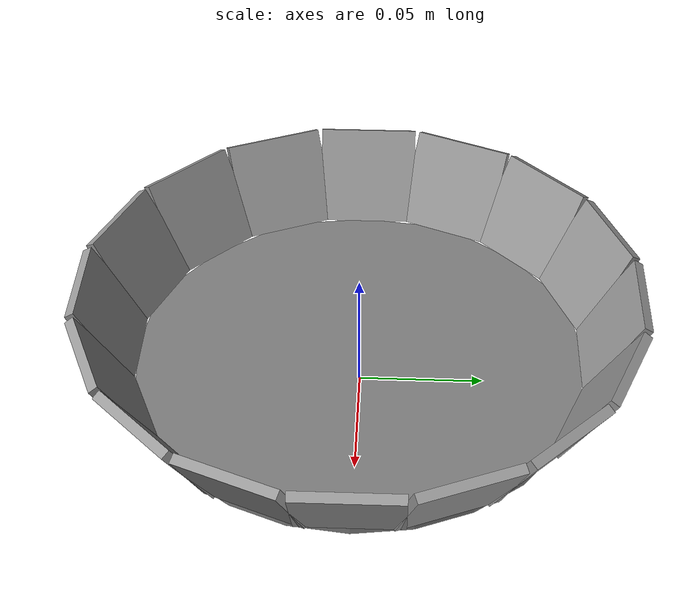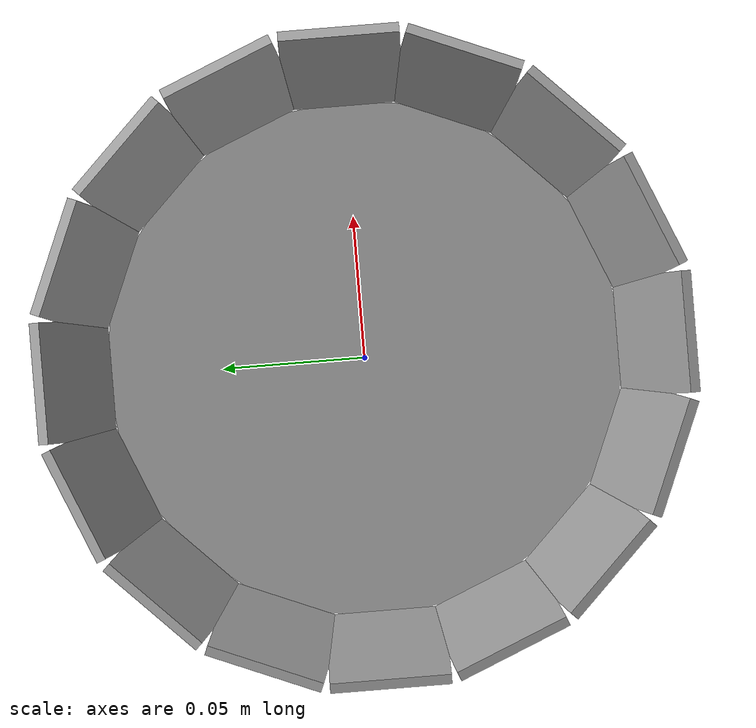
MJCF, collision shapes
<mujoco model="Bowl">

  <default>
    <geom solref="0.01 1" solimp=".95 .99 .0001" condim="1"/>
    <default class="visual">
      <geom group="2" type="mesh" contype="0" conaffinity="0"/>
    </default>
    <default class="collision">
      <geom group="3"/>
    </default>
  </default>

  <asset>
    <material name="White_Gloss" specular="0.5" shininess="0.36" rgba="0.8 0.8 0.8 0.50000"/>
    <mesh file="Bowl.obj"/>
  </asset>

  <worldbody>

  <body name="Bowl">
    <geom type="mesh"  material="White_Gloss" mesh="Bowl" class="visual" quat="0.707 0.707 0 0"/>
    <geom type="cylinder" pos="0 0 0.01" size="0.09 0.003" />
    <geom type="cylinder" pos="0 0 0.003" size="0.06 0.003" />

    <body name="hollow_cylinder" pos="0 0 0.04">
      <geom type="box" size="0.002 0.0205 0.0200" pos="0.0998 0.0000 -0.0100" quat="0.965926 0.000000 0.258819 0.000000" rgba="0.6 0.6 0.6 1" contype="1" conaffinity="1"/>
      <geom type="box" size="0.002 0.0205 0.0200" pos="0.0922 0.0382 -0.0100" quat="0.947366 -0.050493 0.253846 0.188443" rgba="0.6 0.6 0.6 1" contype="1" conaffinity="1"/>
      <geom type="box" size="0.002 0.0205 0.0200" pos="0.0706 0.0706 -0.0100" quat="0.892399 -0.099046 0.239118 0.369644" rgba="0.6 0.6 0.6 1" contype="1" conaffinity="1"/>
      <geom type="box" size="0.002 0.0205 0.0200" pos="0.0382 0.0922 -0.0100" quat="0.803138 -0.143792 0.215200 0.536640" rgba="0.6 0.6 0.6 1" contype="1" conaffinity="1"/>
      <geom type="box" size="0.002 0.0205 0.0200" pos="0.0000 0.0998 -0.0100" quat="0.683013 -0.183013 0.183013 0.683013" rgba="0.6 0.6 0.6 1" contype="1" conaffinity="1"/>
      <geom type="box" size="0.002 0.0205 0.0200" pos="-0.0382 0.0922 -0.0100" quat="0.536640 -0.215200 0.143792 0.803138" rgba="0.6 0.6 0.6 1" contype="1" conaffinity="1"/>
      <geom type="box" size="0.002 0.0205 0.0200" pos="-0.0706 0.0706 -0.0100" quat="0.369644 -0.239118 0.099046 0.892399" rgba="0.6 0.6 0.6 1" contype="1" conaffinity="1"/>
      <geom type="box" size="0.002 0.0205 0.0200" pos="-0.0922 0.0382 -0.0100" quat="0.188443 -0.253846 0.050493 0.947366" rgba="0.6 0.6 0.6 1" contype="1" conaffinity="1"/>
      <geom type="box" size="0.002 0.0205 0.0200" pos="-0.0998 0.0000 -0.0100" quat="0.000000 -0.258819 0.000000 0.965926" rgba="0.6 0.6 0.6 1" contype="1" conaffinity="1"/>
      <geom type="box" size="0.002 0.0205 0.0200" pos="-0.0922 -0.0382 -0.0100" quat="-0.188443 -0.253846 -0.050493 0.947366" rgba="0.6 0.6 0.6 1" contype="1" conaffinity="1"/>
      <geom type="box" size="0.002 0.0205 0.0200" pos="-0.0706 -0.0706 -0.0100" quat="-0.369644 -0.239118 -0.099046 0.892399" rgba="0.6 0.6 0.6 1" contype="1" conaffinity="1"/>
      <geom type="box" size="0.002 0.0205 0.0200" pos="-0.0382 -0.0922 -0.0100" quat="-0.536640 -0.215200 -0.143792 0.803138" rgba="0.6 0.6 0.6 1" contype="1" conaffinity="1"/>
      <geom type="box" size="0.002 0.0205 0.0200" pos="-0.0000 -0.0998 -0.0100" quat="-0.683013 -0.183013 -0.183013 0.683013" rgba="0.6 0.6 0.6 1" contype="1" conaffinity="1"/>
      <geom type="box" size="0.002 0.0205 0.0200" pos="0.0382 -0.0922 -0.0100" quat="-0.803138 -0.143792 -0.215200 0.536640" rgba="0.6 0.6 0.6 1" contype="1" conaffinity="1"/>
      <geom type="box" size="0.002 0.0205 0.0200" pos="0.0706 -0.0706 -0.0100" quat="-0.892399 -0.099046 -0.239118 0.369644" rgba="0.6 0.6 0.6 1" contype="1" conaffinity="1"/>
      <geom type="box" size="0.002 0.0205 0.0200" pos="0.0922 -0.0382 -0.0100" quat="-0.947366 -0.050493 -0.253846 0.188443" rgba="0.6 0.6 0.6 1" contype="1" conaffinity="1"/>
    </body>

  </body>

  </worldbody>

</mujoco>
